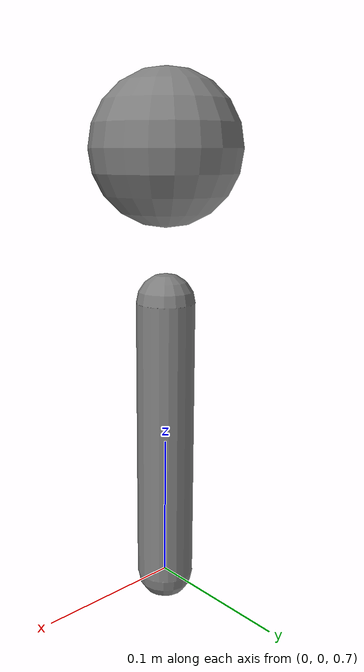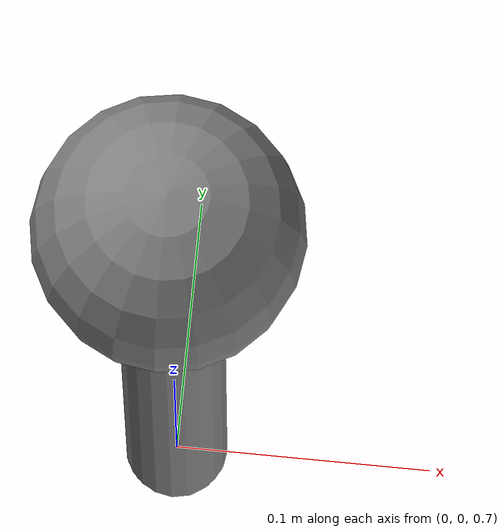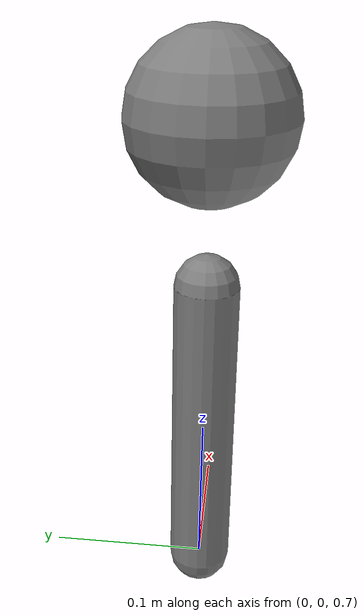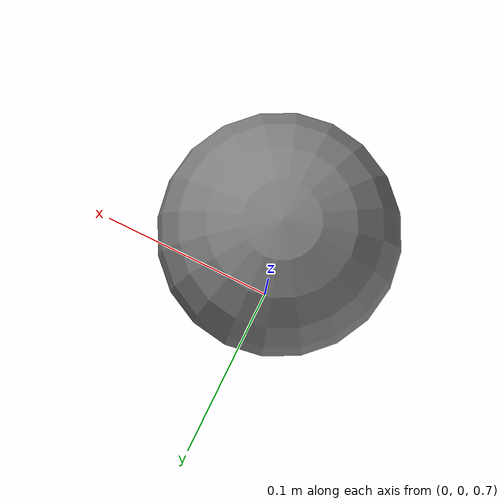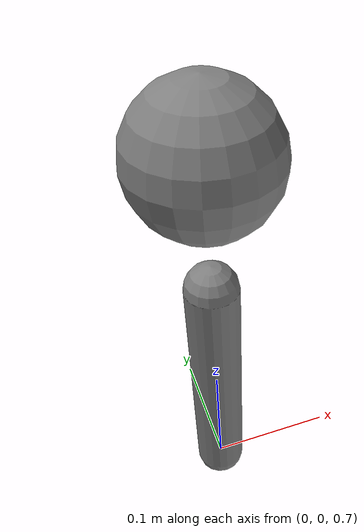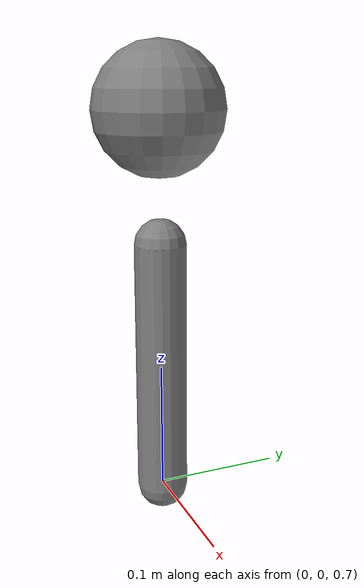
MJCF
<mujoco model="minimal_robot">
  <option timestep="0.002" gravity="0 0 0"/>
  <worldbody>
    <body name="pelvis" pos="0 0 1">
      <freejoint name="floating_base"/>
      <geom type="sphere" size="0.05" mass="1"/>
      <body name="link" pos="0 0 -0.1">
        <joint name="joint" type="hinge" axis="0 1 0" range="-1 1"/>
        <geom type="capsule" size="0.02" fromto="0 0 0 0 0 -0.2" mass="0.1"/>
      </body>
    </body>
  </worldbody>
  <actuator>
    <position name="joint_position" joint="joint" kp="20" ctrlrange="-1 1"/>
  </actuator>
  <keyframe>
    <key name="stand" qpos="0 0 1 1 0 0 0 0.25"/>
  </keyframe>
</mujoco>
